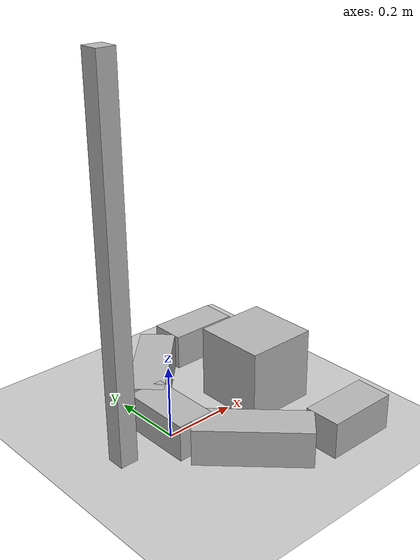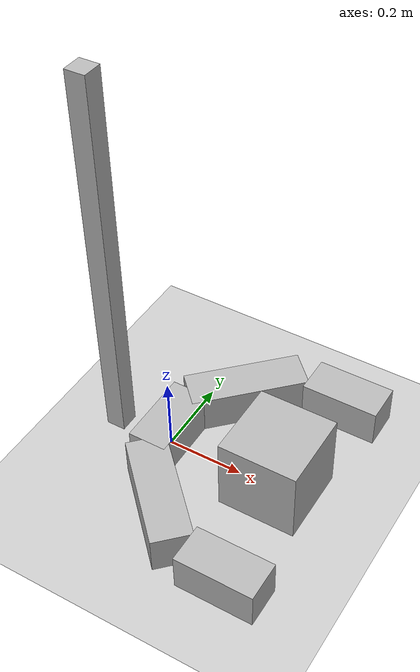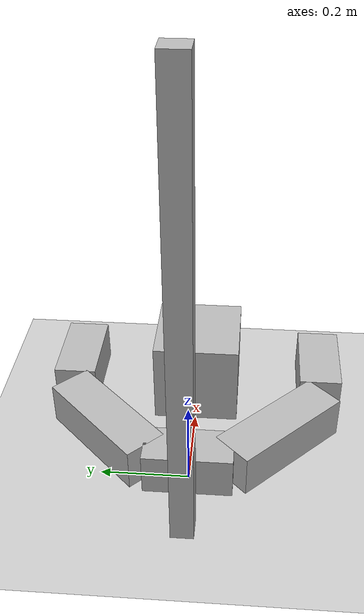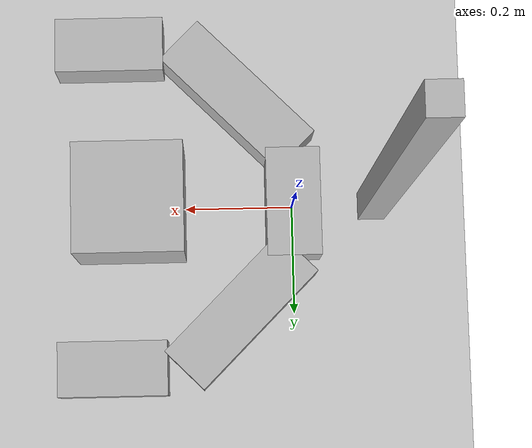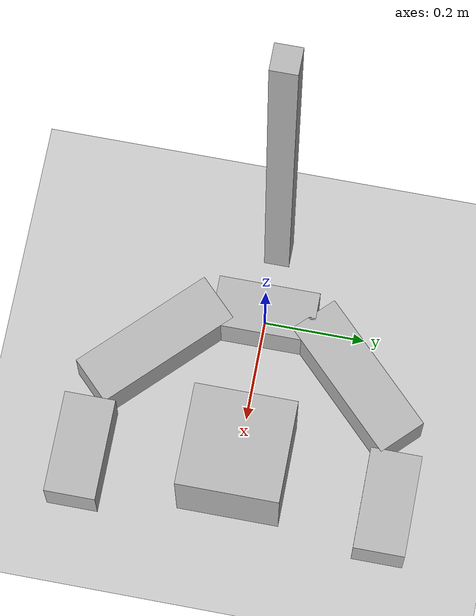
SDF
<?xml version="1.0" ?>
<sdf version="1.4">
  <world name="default">
    <include>
      <uri>model://ground_plane</uri>
    </include>
    <include>
      <uri>model://sun</uri>
    </include>

    <include>
      <uri>model://simple_gripper</uri>
    </include>

    <model name="box">
      <pose>0.3 0 0.1 0 0 0</pose>
      <link name="link">
        <collision name="collision">
          <geometry>
            <box>
              <size>.2 .2 .2</size>
            </box>
          </geometry>
        </collision>
        <visual name="visual">
          <geometry>
            <box>
              <size>.2 .2 .2</size>
            </box>
          </geometry>
          <material>
            <script>Gazebo/WoodPallet</script>
          </material>
        </visual>
      </link>
    </model>
  </world>
</sdf>

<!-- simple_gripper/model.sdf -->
<sdf version="1.5">
  <model name="simple_gripper">
    <link name="riser">
      <pose>-0.15 0.0 0.5 0 0 0</pose>
      <inertial>
        <mass>10</mass>
      </inertial>
      <collision name="collision">
        <geometry>
          <box>
            <size>0.05 0.05 1.0</size>
          </box>
        </geometry>
        <surface>
          <contact>
            <ode>
              <max_vel>0.0</max_vel>
            </ode>
          </contact>
        </surface>
      </collision>
      <visual name="visual">
        <geometry>
          <box>
            <size>0.05 0.05 1.0</size>
          </box>
        </geometry>
      </visual>
    </link>
    <link name="palm">
      <pose>0.0 0.0 0.05 0 0 0</pose>
      <inertial>
        <mass>0.5</mass>
      </inertial>
      <collision name="collision">
        <geometry>
          <box>
            <size>0.1 0.2 0.1</size>
          </box>
        </geometry>
        <surface>
          <contact>
            <ode>
              <max_vel>0.0</max_vel>
            </ode>
          </contact>
        </surface>
      </collision>
      <visual name="visual">
        <geometry>
          <box>
            <size>0.1 0.2 0.1</size>
          </box>
        </geometry>
      </visual>
    </link>
    <link name="left_finger">
      <pose>0.1 0.2 0.05 0 0 -0.78539</pose>
      <inertial>
        <mass>0.1</mass>
      </inertial>
      <collision name="collision">
        <geometry>
          <box>
            <size>0.1 0.3 0.1</size>
          </box>
        </geometry>
        <surface>
          <friction>
            <ode>
              <mu>0.1</mu>
              <mu2>0</mu2>
            </ode>
          </friction>
          <contact>
            <ode>
              <max_vel>0.0</max_vel>
            </ode>
          </contact>
        </surface>
      </collision>
      <visual name="visual">
        <geometry>
          <box>
            <size>0.1 0.3 0.1</size>
          </box>
        </geometry>
      </visual>
    </link>
    <link name="left_finger_tip">
      <pose>0.336 0.3 0.05 0 0 1.5707</pose>
      <inertial>
        <mass>0.5</mass>
      </inertial>
      <collision name="collision">
        <geometry>
          <box>
            <size>0.1 0.2 0.1</size>
          </box>
        </geometry>
        <surface>
          <friction>
            <ode>
              <mu>.1</mu>
              <mu2>0</mu2>
            </ode>
          </friction>
          <contact>
            <ode>
              <max_vel>0.0</max_vel>
            </ode>
          </contact>
        </surface>
      </collision>
      <visual name="visual">
        <geometry>
          <box>
            <size>0.1 0.2 0.1</size>
          </box>
        </geometry>
      </visual>
    </link>
    <link name="right_finger">
      <pose>0.1 -0.2 0.05 0 0 .78539</pose>
      <inertial>
        <mass>0.1</mass>
      </inertial>
      <collision name="collision">
        <geometry>
          <box>
            <size>0.1 0.3 0.1</size>
          </box>
        </geometry>
        <surface>
          <friction>
            <ode>
              <mu>0.1</mu>
              <mu2>0</mu2>
            </ode>
          </friction>
          <contact>
            <ode>
              <max_vel>0.0</max_vel>
            </ode>
          </contact>
        </surface>
      </collision>
      <visual name="visual">
        <geometry>
          <box>
            <size>0.1 0.3 0.1</size>
          </box>
        </geometry>
      </visual>
    </link>
    <link name="right_finger_tip">
      <pose>0.336 -0.3 0.05 0 0 1.5707</pose>
      <inertial>
        <mass>0.1</mass>
      </inertial>
      <collision name="collision">
        <geometry>
          <box>
            <size>0.1 0.2 0.1</size>
          </box>
        </geometry>
        <surface>
          <friction>
            <ode>
              <mu>0.1</mu>
              <mu2>0</mu2>
            </ode>
          </friction>
          <contact>
            <ode>
              <max_vel>0.0</max_vel>
            </ode>
          </contact>
        </surface>
      </collision>
      <visual name="visual">
        <geometry>
          <box>
            <size>0.1 0.2 0.1</size>
          </box>
        </geometry>
      </visual>
    </link>
    <joint name="palm_left_finger" type="revolute">
      <pose>0 -0.15 0 0 0 0</pose>
      <child>left_finger</child>
      <parent>palm</parent>
      <axis>
        <limit>
          <lower>-0.8</lower>
          <upper>0.8</upper>
        </limit>
        <xyz>0 0 1</xyz>
        <use_parent_model_frame>true</use_parent_model_frame>
      </axis>
    </joint>
    <joint name="left_finger_tip" type="revolute">
      <pose>0 0.1 0 0 0 0</pose>
      <child>left_finger_tip</child>
      <parent>left_finger</parent>
      <axis>
        <limit>
          <lower>-0.8</lower>
          <upper>0.8</upper>
        </limit>
        <xyz>0 0 1</xyz>
        <use_parent_model_frame>true</use_parent_model_frame>
      </axis>
    </joint>
    <joint name="palm_right_finger" type="revolute">
      <pose>0 0.15 0 0 0 0</pose>
      <child>right_finger</child>
      <parent>palm</parent>
      <axis>
        <limit>
          <lower>-0.8</lower>
          <upper>0.8</upper>
        </limit>
        <xyz>0 0 1</xyz>
        <use_parent_model_frame>true</use_parent_model_frame>
      </axis>
    </joint>
    <joint name="right_finger_tip" type="revolute">
      <pose>0 0.1 0 0 0 0</pose>
      <child>right_finger_tip</child>
      <parent>right_finger</parent>
      <axis>
        <limit>
          <lower>-0.8</lower>
          <upper>0.8</upper>
        </limit>
        <xyz>0 0 1</xyz>
        <use_parent_model_frame>true</use_parent_model_frame>
      </axis>
    </joint>
    <joint name="palm_riser" type="prismatic">
      <child>palm</child>
      <parent>riser</parent>
      <axis>
        <limit>
          <lower>0</lower>
          <upper>0.9</upper>
        </limit>
        <xyz>0 0 1</xyz>
        <use_parent_model_frame>true</use_parent_model_frame>
      </axis>
    </joint>
    <gripper name="simple_gripper">
      <grasp_check>
        <detach_steps>40</detach_steps>
        <attach_steps>20</attach_steps>
        <min_contact_count>2</min_contact_count>
      </grasp_check>
      <gripper_link>right_finger</gripper_link>
      <gripper_link>right_finger_tip</gripper_link>
      <gripper_link>left_finger</gripper_link>
      <gripper_link>left_finger_tip</gripper_link>
      <palm_link>palm</palm_link>
    </gripper>
  </model>
</sdf>
